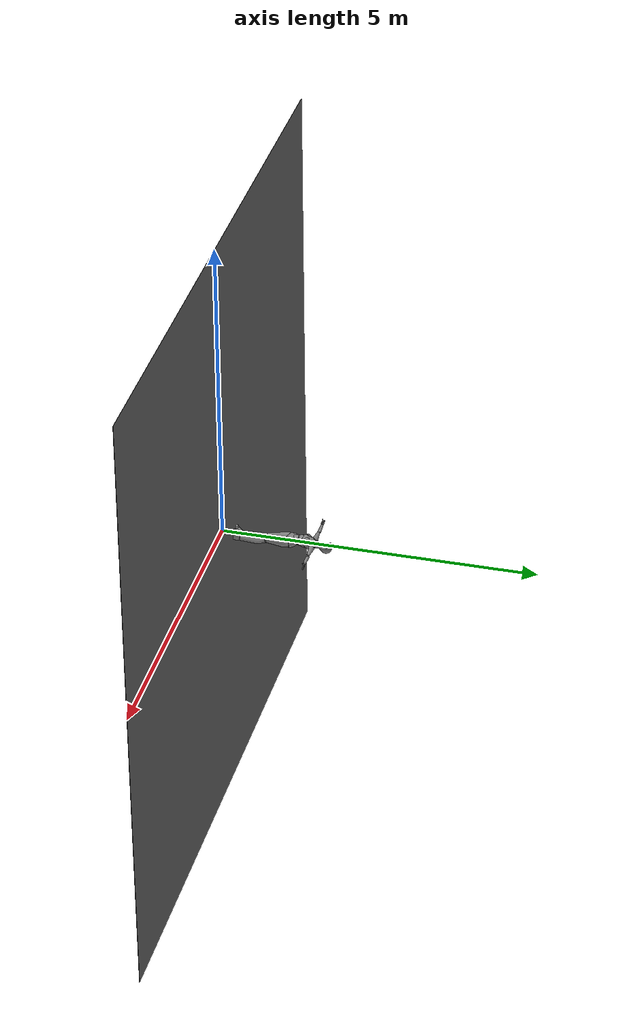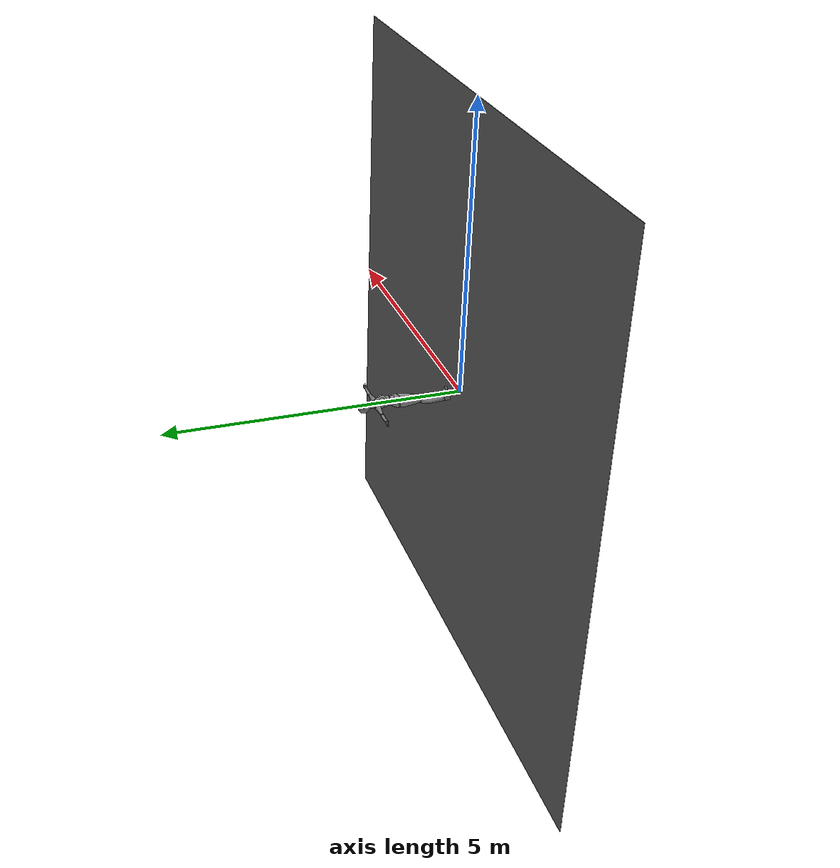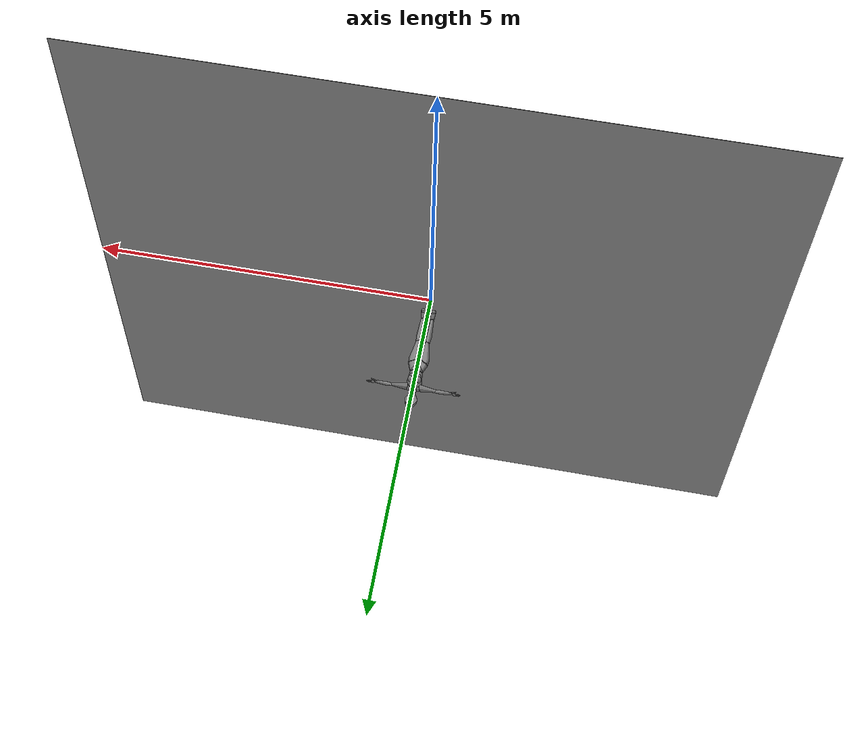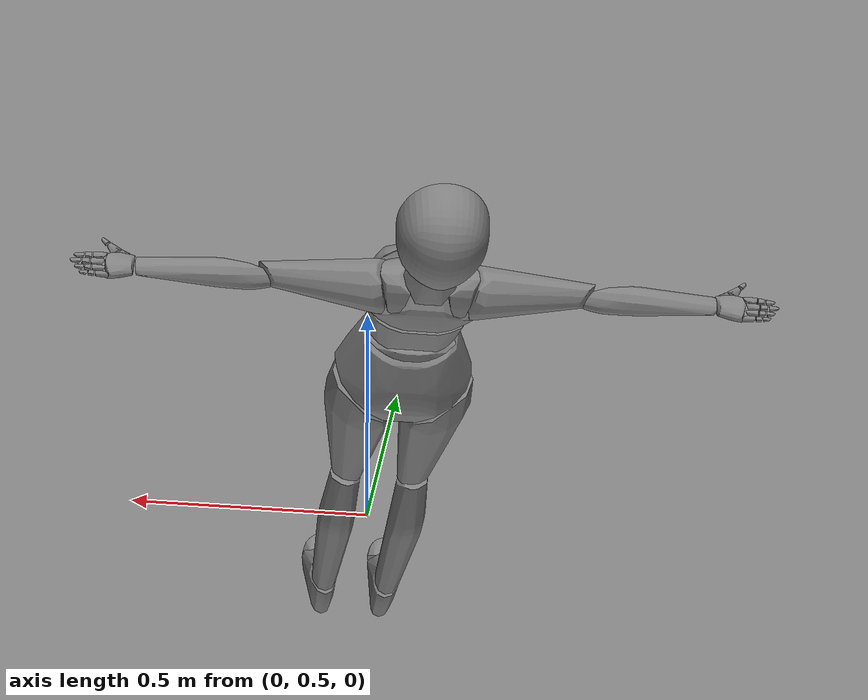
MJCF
<?xml version="1.0" ?>
<mujoco model="vrm_physics_body">
    <compiler angle="radian" meshdir="STL" autolimits="true"/>
    <default>
        <geom density="1000" contype="1" conaffinity="0"/>
        <joint damping="0.01" stiffness="0.0"/>
    </default>
    <asset>
        <mesh name="J_Bip_C_Hips" file="J_Bip_C_Hips.stl"/>
        <mesh name="J_Bip_C_Spine" file="J_Bip_C_Spine.stl"/>
        <mesh name="J_Bip_C_Chest" file="J_Bip_C_Chest.stl"/>
        <mesh name="J_Bip_C_UpperChest" file="J_Bip_C_UpperChest.stl"/>
        <mesh name="J_Sec_L_Bust1" file="J_Sec_L_Bust1.stl"/>
        <mesh name="J_Sec_R_Bust1" file="J_Sec_R_Bust1.stl"/>
        <mesh name="J_Bip_C_Neck" file="J_Bip_C_Neck.stl"/>
        <mesh name="J_Bip_C_Head" file="J_Bip_C_Head.stl"/>
        <mesh name="J_Bip_L_Shoulder" file="J_Bip_L_Shoulder.stl"/>
        <mesh name="J_Bip_L_UpperArm" file="J_Bip_L_UpperArm.stl"/>
        <mesh name="J_Bip_L_LowerArm" file="J_Bip_L_LowerArm.stl"/>
        <mesh name="J_Bip_L_Hand" file="J_Bip_L_Hand.stl"/>
        <mesh name="J_Bip_L_Index1" file="J_Bip_L_Index1.stl"/>
        <mesh name="J_Bip_L_Index2" file="J_Bip_L_Index2.stl"/>
        <mesh name="J_Bip_L_Index3" file="J_Bip_L_Index3.stl"/>
        <mesh name="J_Bip_L_Little1" file="J_Bip_L_Little1.stl"/>
        <mesh name="J_Bip_L_Little2" file="J_Bip_L_Little2.stl"/>
        <mesh name="J_Bip_L_Little3" file="J_Bip_L_Little3.stl"/>
        <mesh name="J_Bip_L_Middle1" file="J_Bip_L_Middle1.stl"/>
        <mesh name="J_Bip_L_Middle2" file="J_Bip_L_Middle2.stl"/>
        <mesh name="J_Bip_L_Middle3" file="J_Bip_L_Middle3.stl"/>
        <mesh name="J_Bip_L_Ring1" file="J_Bip_L_Ring1.stl"/>
        <mesh name="J_Bip_L_Ring2" file="J_Bip_L_Ring2.stl"/>
        <mesh name="J_Bip_L_Ring3" file="J_Bip_L_Ring3.stl"/>
        <mesh name="J_Bip_L_Thumb1" file="J_Bip_L_Thumb1.stl"/>
        <mesh name="J_Bip_L_Thumb2" file="J_Bip_L_Thumb2.stl"/>
        <mesh name="J_Bip_L_Thumb3" file="J_Bip_L_Thumb3.stl"/>
        <mesh name="J_Bip_R_Shoulder" file="J_Bip_R_Shoulder.stl"/>
        <mesh name="J_Bip_R_UpperArm" file="J_Bip_R_UpperArm.stl"/>
        <mesh name="J_Bip_R_LowerArm" file="J_Bip_R_LowerArm.stl"/>
        <mesh name="J_Bip_R_Hand" file="J_Bip_R_Hand.stl"/>
        <mesh name="J_Bip_R_Index1" file="J_Bip_R_Index1.stl"/>
        <mesh name="J_Bip_R_Index2" file="J_Bip_R_Index2.stl"/>
        <mesh name="J_Bip_R_Index3" file="J_Bip_R_Index3.stl"/>
        <mesh name="J_Bip_R_Little1" file="J_Bip_R_Little1.stl"/>
        <mesh name="J_Bip_R_Little2" file="J_Bip_R_Little2.stl"/>
        <mesh name="J_Bip_R_Little3" file="J_Bip_R_Little3.stl"/>
        <mesh name="J_Bip_R_Middle1" file="J_Bip_R_Middle1.stl"/>
        <mesh name="J_Bip_R_Middle2" file="J_Bip_R_Middle2.stl"/>
        <mesh name="J_Bip_R_Middle3" file="J_Bip_R_Middle3.stl"/>
        <mesh name="J_Bip_R_Ring1" file="J_Bip_R_Ring1.stl"/>
        <mesh name="J_Bip_R_Ring2" file="J_Bip_R_Ring2.stl"/>
        <mesh name="J_Bip_R_Ring3" file="J_Bip_R_Ring3.stl"/>
        <mesh name="J_Bip_R_Thumb1" file="J_Bip_R_Thumb1.stl"/>
        <mesh name="J_Bip_R_Thumb2" file="J_Bip_R_Thumb2.stl"/>
        <mesh name="J_Bip_R_Thumb3" file="J_Bip_R_Thumb3.stl"/>
        <mesh name="J_Bip_L_UpperLeg" file="J_Bip_L_UpperLeg.stl"/>
        <mesh name="J_Bip_L_LowerLeg" file="J_Bip_L_LowerLeg.stl"/>
        <mesh name="J_Bip_L_Foot" file="J_Bip_L_Foot.stl"/>
        <mesh name="J_Bip_L_ToeBase" file="J_Bip_L_ToeBase.stl"/>
        <mesh name="J_Bip_R_UpperLeg" file="J_Bip_R_UpperLeg.stl"/>
        <mesh name="J_Bip_R_LowerLeg" file="J_Bip_R_LowerLeg.stl"/>
        <mesh name="J_Bip_R_Foot" file="J_Bip_R_Foot.stl"/>
        <mesh name="J_Bip_R_ToeBase" file="J_Bip_R_ToeBase.stl"/>
    </asset>
    <worldbody>
        <geom type="plane" size="5 5 0.1" name="floor" zaxis="0 1 0" contype="0" conaffinity="1"/>
        <body name="J_Bip_C_Hips" pos="0.000000 1.109305 0.000000">
            <freejoint name="root_freejoint"/>
            <geom type="mesh" mesh="J_Bip_C_Hips"/>
            <geom type="sphere" size="0.05" mass="0.5" contype="0" conaffinity="0" rgba="0 0 0 0"/>
            <body name="J_Bip_C_Spine" pos="-0.000000 0.057098 0.005326">
                <joint name="J_Bip_C_Spine" type="ball"/>
                <geom type="mesh" mesh="J_Bip_C_Spine"/>
                <geom type="sphere" size="0.05" mass="0.5" contype="0" conaffinity="0" rgba="0 0 0 0"/>
                <body name="J_Bip_C_Chest" pos="0.000000 0.106512 -0.012713">
                    <joint name="J_Bip_C_Chest" type="ball"/>
                    <geom type="mesh" mesh="J_Bip_C_Chest"/>
                    <geom type="sphere" size="0.05" mass="0.5" contype="0" conaffinity="0" rgba="0 0 0 0"/>
                    <body name="J_Bip_C_UpperChest" pos="-0.000000 0.102391 -0.001320">
                        <joint name="J_Bip_C_UpperChest" type="ball"/>
                        <geom type="mesh" mesh="J_Bip_C_UpperChest"/>
                        <geom type="sphere" size="0.05" mass="0.5" contype="0" conaffinity="0" rgba="0 0 0 0"/>
                        <body name="J_Sec_L_Bust1" pos="0.045813 -0.026929 0.056758">
                            <joint name="J_Sec_L_Bust1" type="ball"/>
                            <geom type="mesh" mesh="J_Sec_L_Bust1"/>
                            <geom type="sphere" size="0.05" mass="0.5" contype="0" conaffinity="0" rgba="0 0 0 0"/>
                            <body name="J_Sec_L_Bust2" pos="-0.001044 0.000069 0.043307">
                                <joint name="J_Sec_L_Bust2" type="ball"/>
                                <geom type="sphere" size="0.05" mass="0.5" contype="0" conaffinity="0" rgba="0 0 0 0"/>
                            </body>
                        </body>
                        <body name="J_Sec_R_Bust1" pos="-0.045813 -0.026929 0.056758">
                            <joint name="J_Sec_R_Bust1" type="ball"/>
                            <geom type="mesh" mesh="J_Sec_R_Bust1"/>
                            <geom type="sphere" size="0.05" mass="0.5" contype="0" conaffinity="0" rgba="0 0 0 0"/>
                            <body name="J_Sec_R_Bust2" pos="0.001044 0.000069 0.043307">
                                <joint name="J_Sec_R_Bust2" type="ball"/>
                                <geom type="sphere" size="0.05" mass="0.5" contype="0" conaffinity="0" rgba="0 0 0 0"/>
                            </body>
                        </body>
                        <body name="J_Bip_C_Neck" pos="-0.000000 0.124557 0.006980">
                            <joint name="J_Bip_C_Neck" type="ball"/>
                            <geom type="mesh" mesh="J_Bip_C_Neck"/>
                            <geom type="sphere" size="0.05" mass="0.5" contype="0" conaffinity="0" rgba="0 0 0 0"/>
                            <body name="J_Bip_C_Head" pos="-0.000000 0.071787 0.000372">
                                <joint name="J_Bip_C_Head" type="ball"/>
                                <geom type="mesh" mesh="J_Bip_C_Head"/>
                                <geom type="sphere" size="0.05" mass="0.5" contype="0" conaffinity="0" rgba="0 0 0 0"/>
                                <body name="J_Adj_L_FaceEye" pos="0.014650 0.063260 0.023188">
                                    <joint name="J_Adj_L_FaceEye" type="ball"/>
                                    <geom type="sphere" size="0.05" mass="0.5" contype="0" conaffinity="0" rgba="0 0 0 0"/>
                                </body>
                                <body name="J_Adj_R_FaceEye" pos="-0.014650 0.063260 0.023188">
                                    <joint name="J_Adj_R_FaceEye" type="ball"/>
                                    <geom type="sphere" size="0.05" mass="0.5" contype="0" conaffinity="0" rgba="0 0 0 0"/>
                                </body>
                                <body name="J_Sec_Hair1_01" pos="0.002419 0.108442 0.107708">
                                    <joint name="J_Sec_Hair1_01" type="ball"/>
                                    <geom type="sphere" size="0.05" mass="0.5" contype="0" conaffinity="0" rgba="0 0 0 0"/>
                                    <body name="J_Sec_Hair2_01" pos="0.001229 0.052552 -0.000000">
                                        <joint name="J_Sec_Hair2_01" type="ball"/>
                                        <geom type="sphere" size="0.05" mass="0.5" contype="0" conaffinity="0" rgba="0 0 0 0"/>
                                    </body>
                                </body>
                                <body name="J_Sec_Hair1_02" pos="0.069055 0.072728 0.090523">
                                    <joint name="J_Sec_Hair1_02" type="ball"/>
                                    <geom type="sphere" size="0.05" mass="0.5" contype="0" conaffinity="0" rgba="0 0 0 0"/>
                                    <body name="J_Sec_Hair2_02" pos="-0.000484 0.066251 0.000000">
                                        <joint name="J_Sec_Hair2_02" type="ball"/>
                                        <geom type="sphere" size="0.05" mass="0.5" contype="0" conaffinity="0" rgba="0 0 0 0"/>
                                        <body name="J_Sec_Hair3_02" pos="-0.002515 0.062720 -0.000000">
                                            <joint name="J_Sec_Hair3_02" type="ball"/>
                                            <geom type="sphere" size="0.05" mass="0.5" contype="0" conaffinity="0" rgba="0 0 0 0"/>
                                        </body>
                                    </body>
                                </body>
                                <body name="J_Sec_Hair1_03" pos="0.086742 0.076004 0.003153">
                                    <joint name="J_Sec_Hair1_03" type="ball"/>
                                    <geom type="sphere" size="0.05" mass="0.5" contype="0" conaffinity="0" rgba="0 0 0 0"/>
                                    <body name="J_Sec_Hair2_03" pos="0.000127 0.044013 -0.000000">
                                        <joint name="J_Sec_Hair2_03" type="ball"/>
                                        <geom type="sphere" size="0.05" mass="0.5" contype="0" conaffinity="0" rgba="0 0 0 0"/>
                                        <body name="J_Sec_Hair3_03" pos="0.000271 0.043324 0.000000">
                                            <joint name="J_Sec_Hair3_03" type="ball"/>
                                            <geom type="sphere" size="0.05" mass="0.5" contype="0" conaffinity="0" rgba="0 0 0 0"/>
                                            <body name="J_Sec_Hair4_03" pos="-0.002194 0.040856 -0.000000">
                                                <joint name="J_Sec_Hair4_03" type="ball"/>
                                                <geom type="sphere" size="0.05" mass="0.5" contype="0" conaffinity="0" rgba="0 0 0 0"/>
                                            </body>
                                        </body>
                                    </body>
                                </body>
                                <body name="J_Sec_Hair1_04" pos="0.087952 0.082531 -0.034798">
                                    <joint name="J_Sec_Hair1_04" type="ball"/>
                                    <geom type="sphere" size="0.05" mass="0.5" contype="0" conaffinity="0" rgba="0 0 0 0"/>
                                    <body name="J_Sec_Hair2_04" pos="-0.000263 0.045137 -0.000000">
                                        <joint name="J_Sec_Hair2_04" type="ball"/>
                                        <geom type="sphere" size="0.05" mass="0.5" contype="0" conaffinity="0" rgba="0 0 0 0"/>
                                        <body name="J_Sec_Hair3_04" pos="0.000365 0.045153 -0.000000">
                                            <joint name="J_Sec_Hair3_04" type="ball"/>
                                            <geom type="sphere" size="0.05" mass="0.5" contype="0" conaffinity="0" rgba="0 0 0 0"/>
                                            <body name="J_Sec_Hair4_04" pos="-0.001400 0.040048 0.000000">
                                                <joint name="J_Sec_Hair4_04" type="ball"/>
                                                <geom type="sphere" size="0.05" mass="0.5" contype="0" conaffinity="0" rgba="0 0 0 0"/>
                                            </body>
                                        </body>
                                    </body>
                                </body>
                                <body name="J_Sec_Hair1_05" pos="-0.074234 0.099107 0.078419">
                                    <joint name="J_Sec_Hair1_05" type="ball"/>
                                    <geom type="sphere" size="0.05" mass="0.5" contype="0" conaffinity="0" rgba="0 0 0 0"/>
                                    <body name="J_Sec_Hair2_05" pos="-0.000331 0.074893 0.000000">
                                        <joint name="J_Sec_Hair2_05" type="ball"/>
                                        <geom type="sphere" size="0.05" mass="0.5" contype="0" conaffinity="0" rgba="0 0 0 0"/>
                                        <body name="J_Sec_Hair3_05" pos="0.002255 0.072153 0.000000">
                                            <joint name="J_Sec_Hair3_05" type="ball"/>
                                            <geom type="sphere" size="0.05" mass="0.5" contype="0" conaffinity="0" rgba="0 0 0 0"/>
                                        </body>
                                    </body>
                                </body>
                                <body name="J_Sec_Hair1_06" pos="0.000381 0.090281 -0.119759">
                                    <joint name="J_Sec_Hair1_06" type="ball"/>
                                    <geom type="sphere" size="0.05" mass="0.5" contype="0" conaffinity="0" rgba="0 0 0 0"/>
                                    <body name="J_Sec_Hair2_06" pos="-0.000280 0.042569 0.000000">
                                        <joint name="J_Sec_Hair2_06" type="ball"/>
                                        <geom type="sphere" size="0.05" mass="0.5" contype="0" conaffinity="0" rgba="0 0 0 0"/>
                                        <body name="J_Sec_Hair3_06" pos="-0.000558 0.042443 0.000000">
                                            <joint name="J_Sec_Hair3_06" type="ball"/>
                                            <geom type="sphere" size="0.05" mass="0.5" contype="0" conaffinity="0" rgba="0 0 0 0"/>
                                            <body name="J_Sec_Hair4_06" pos="0.000391 0.042381 -0.000000">
                                                <joint name="J_Sec_Hair4_06" type="ball"/>
                                                <geom type="sphere" size="0.05" mass="0.5" contype="0" conaffinity="0" rgba="0 0 0 0"/>
                                            </body>
                                        </body>
                                    </body>
                                </body>
                                <body name="J_Sec_Hair1_07" pos="-0.092210 0.087500 -0.000829">
                                    <joint name="J_Sec_Hair1_07" type="ball"/>
                                    <geom type="sphere" size="0.05" mass="0.5" contype="0" conaffinity="0" rgba="0 0 0 0"/>
                                    <body name="J_Sec_Hair2_07" pos="-0.000233 0.043964 -0.000000">
                                        <joint name="J_Sec_Hair2_07" type="ball"/>
                                        <geom type="sphere" size="0.05" mass="0.5" contype="0" conaffinity="0" rgba="0 0 0 0"/>
                                        <body name="J_Sec_Hair3_07" pos="-0.000981 0.043719 -0.000000">
                                            <joint name="J_Sec_Hair3_07" type="ball"/>
                                            <geom type="sphere" size="0.05" mass="0.5" contype="0" conaffinity="0" rgba="0 0 0 0"/>
                                            <body name="J_Sec_Hair4_07" pos="0.000891 0.041266 -0.000000">
                                                <joint name="J_Sec_Hair4_07" type="ball"/>
                                                <geom type="sphere" size="0.05" mass="0.5" contype="0" conaffinity="0" rgba="0 0 0 0"/>
                                            </body>
                                        </body>
                                    </body>
                                </body>
                            </body>
                        </body>
                        <body name="J_Bip_L_Shoulder" pos="0.020164 0.099307 0.006153">
                            <joint name="J_Bip_L_Shoulder" type="ball"/>
                            <geom type="mesh" mesh="J_Bip_L_Shoulder"/>
                            <geom type="sphere" size="0.05" mass="0.5" contype="0" conaffinity="0" rgba="0 0 0 0"/>
                            <body name="J_Bip_L_UpperArm" pos="0.060882 -0.000051 -0.000000">
                                <joint name="J_Bip_L_UpperArm" type="ball"/>
                                <geom type="mesh" mesh="J_Bip_L_UpperArm"/>
                                <geom type="sphere" size="0.05" mass="0.5" contype="0" conaffinity="0" rgba="0 0 0 0"/>
                                <body name="J_Bip_L_LowerArm" pos="0.253601 0.000000 0.000000">
                                    <joint name="J_Bip_L_LowerArm" type="ball"/>
                                    <geom type="mesh" mesh="J_Bip_L_LowerArm"/>
                                    <geom type="sphere" size="0.05" mass="0.5" contype="0" conaffinity="0" rgba="0 0 0 0"/>
                                    <body name="J_Bip_L_Hand" pos="0.226637 -0.000000 0.000014">
                                        <joint name="J_Bip_L_Hand" type="ball"/>
                                        <geom type="mesh" mesh="J_Bip_L_Hand"/>
                                        <geom type="sphere" size="0.05" mass="0.5" contype="0" conaffinity="0" rgba="0 0 0 0"/>
                                        <body name="J_Bip_L_Index1" pos="0.054373 0.006165 0.016419">
                                            <joint name="J_Bip_L_Index1" type="ball"/>
                                            <geom type="mesh" mesh="J_Bip_L_Index1"/>
                                            <geom type="sphere" size="0.05" mass="0.5" contype="0" conaffinity="0" rgba="0 0 0 0"/>
                                            <body name="J_Bip_L_Index2" pos="0.027624 0.000000 -0.000004">
                                                <joint name="J_Bip_L_Index2" type="ball"/>
                                                <geom type="mesh" mesh="J_Bip_L_Index2"/>
                                                <geom type="sphere" size="0.05" mass="0.5" contype="0" conaffinity="0" rgba="0 0 0 0"/>
                                                <body name="J_Bip_L_Index3" pos="0.017008 -0.000003 -0.000004">
                                                    <joint name="J_Bip_L_Index3" type="ball"/>
                                                    <geom type="mesh" mesh="J_Bip_L_Index3"/>
                                                    <geom type="sphere" size="0.05" mass="0.5" contype="0" conaffinity="0" rgba="0 0 0 0"/>
                                                </body>
                                            </body>
                                        </body>
                                        <body name="J_Bip_L_Little1" pos="0.050734 0.006165 -0.024370">
                                            <joint name="J_Bip_L_Little1" type="ball"/>
                                            <geom type="mesh" mesh="J_Bip_L_Little1"/>
                                            <geom type="sphere" size="0.05" mass="0.5" contype="0" conaffinity="0" rgba="0 0 0 0"/>
                                            <body name="J_Bip_L_Little2" pos="0.026108 0.000000 0.000000">
                                                <joint name="J_Bip_L_Little2" type="ball"/>
                                                <geom type="mesh" mesh="J_Bip_L_Little2"/>
                                                <geom type="sphere" size="0.05" mass="0.5" contype="0" conaffinity="0" rgba="0 0 0 0"/>
                                                <body name="J_Bip_L_Little3" pos="0.015047 0.000000 0.000000">
                                                    <joint name="J_Bip_L_Little3" type="ball"/>
                                                    <geom type="mesh" mesh="J_Bip_L_Little3"/>
                                                    <geom type="sphere" size="0.05" mass="0.5" contype="0" conaffinity="0" rgba="0 0 0 0"/>
                                                </body>
                                            </body>
                                        </body>
                                        <body name="J_Bip_L_Middle1" pos="0.055114 0.006165 0.001710">
                                            <joint name="J_Bip_L_Middle1" type="ball"/>
                                            <geom type="mesh" mesh="J_Bip_L_Middle1"/>
                                            <geom type="sphere" size="0.05" mass="0.5" contype="0" conaffinity="0" rgba="0 0 0 0"/>
                                            <body name="J_Bip_L_Middle2" pos="0.030770 -0.000000 -0.000000">
                                                <joint name="J_Bip_L_Middle2" type="ball"/>
                                                <geom type="mesh" mesh="J_Bip_L_Middle2"/>
                                                <geom type="sphere" size="0.05" mass="0.5" contype="0" conaffinity="0" rgba="0 0 0 0"/>
                                                <body name="J_Bip_L_Middle3" pos="0.018983 0.000000 -0.000000">
                                                    <joint name="J_Bip_L_Middle3" type="ball"/>
                                                    <geom type="mesh" mesh="J_Bip_L_Middle3"/>
                                                    <geom type="sphere" size="0.05" mass="0.5" contype="0" conaffinity="0" rgba="0 0 0 0"/>
                                                </body>
                                            </body>
                                        </body>
                                        <body name="J_Bip_L_Ring1" pos="0.054486 0.006165 -0.011350">
                                            <joint name="J_Bip_L_Ring1" type="ball"/>
                                            <geom type="mesh" mesh="J_Bip_L_Ring1"/>
                                            <geom type="sphere" size="0.05" mass="0.5" contype="0" conaffinity="0" rgba="0 0 0 0"/>
                                            <body name="J_Bip_L_Ring2" pos="0.028543 0.000000 0.000000">
                                                <joint name="J_Bip_L_Ring2" type="ball"/>
                                                <geom type="mesh" mesh="J_Bip_L_Ring2"/>
                                                <geom type="sphere" size="0.05" mass="0.5" contype="0" conaffinity="0" rgba="0 0 0 0"/>
                                                <body name="J_Bip_L_Ring3" pos="0.016472 0.000000 0.000000">
                                                    <joint name="J_Bip_L_Ring3" type="ball"/>
                                                    <geom type="mesh" mesh="J_Bip_L_Ring3"/>
                                                    <geom type="sphere" size="0.05" mass="0.5" contype="0" conaffinity="0" rgba="0 0 0 0"/>
                                                </body>
                                            </body>
                                        </body>
                                        <body name="J_Bip_L_Thumb1" pos="0.002926 -0.008360 0.013334">
                                            <joint name="J_Bip_L_Thumb1" type="ball"/>
                                            <geom type="mesh" mesh="J_Bip_L_Thumb1"/>
                                            <geom type="sphere" size="0.05" mass="0.5" contype="0" conaffinity="0" rgba="0 0 0 0"/>
                                            <body name="J_Bip_L_Thumb2" pos="0.038790 0.000114 -0.000006">
                                                <joint name="J_Bip_L_Thumb2" type="ball"/>
                                                <geom type="mesh" mesh="J_Bip_L_Thumb2"/>
                                                <geom type="sphere" size="0.05" mass="0.5" contype="0" conaffinity="0" rgba="0 0 0 0"/>
                                                <body name="J_Bip_L_Thumb3" pos="0.023854 0.000069 -0.000005">
                                                    <joint name="J_Bip_L_Thumb3" type="ball"/>
                                                    <geom type="mesh" mesh="J_Bip_L_Thumb3"/>
                                                    <geom type="sphere" size="0.05" mass="0.5" contype="0" conaffinity="0" rgba="0 0 0 0"/>
                                                </body>
                                            </body>
                                        </body>
                                    </body>
                                </body>
                            </body>
                        </body>
                        <body name="J_Bip_R_Shoulder" pos="-0.020164 0.099307 0.006153">
                            <joint name="J_Bip_R_Shoulder" type="ball"/>
                            <geom type="mesh" mesh="J_Bip_R_Shoulder"/>
                            <geom type="sphere" size="0.05" mass="0.5" contype="0" conaffinity="0" rgba="0 0 0 0"/>
                            <body name="J_Bip_R_UpperArm" pos="-0.060882 -0.000051 -0.000000">
                                <joint name="J_Bip_R_UpperArm" type="ball"/>
                                <geom type="mesh" mesh="J_Bip_R_UpperArm"/>
                                <geom type="sphere" size="0.05" mass="0.5" contype="0" conaffinity="0" rgba="0 0 0 0"/>
                                <body name="J_Bip_R_LowerArm" pos="-0.253601 0.000000 0.000000">
                                    <joint name="J_Bip_R_LowerArm" type="ball"/>
                                    <geom type="mesh" mesh="J_Bip_R_LowerArm"/>
                                    <geom type="sphere" size="0.05" mass="0.5" contype="0" conaffinity="0" rgba="0 0 0 0"/>
                                    <body name="J_Bip_R_Hand" pos="-0.226637 -0.000000 0.000014">
                                        <joint name="J_Bip_R_Hand" type="ball"/>
                                        <geom type="mesh" mesh="J_Bip_R_Hand"/>
                                        <geom type="sphere" size="0.05" mass="0.5" contype="0" conaffinity="0" rgba="0 0 0 0"/>
                                        <body name="J_Bip_R_Index1" pos="-0.054373 0.006165 0.016419">
                                            <joint name="J_Bip_R_Index1" type="ball"/>
                                            <geom type="mesh" mesh="J_Bip_R_Index1"/>
                                            <geom type="sphere" size="0.05" mass="0.5" contype="0" conaffinity="0" rgba="0 0 0 0"/>
                                            <body name="J_Bip_R_Index2" pos="-0.027624 0.000000 -0.000004">
                                                <joint name="J_Bip_R_Index2" type="ball"/>
                                                <geom type="mesh" mesh="J_Bip_R_Index2"/>
                                                <geom type="sphere" size="0.05" mass="0.5" contype="0" conaffinity="0" rgba="0 0 0 0"/>
                                                <body name="J_Bip_R_Index3" pos="-0.017008 -0.000003 -0.000004">
                                                    <joint name="J_Bip_R_Index3" type="ball"/>
                                                    <geom type="mesh" mesh="J_Bip_R_Index3"/>
                                                    <geom type="sphere" size="0.05" mass="0.5" contype="0" conaffinity="0" rgba="0 0 0 0"/>
                                                </body>
                                            </body>
                                        </body>
                                        <body name="J_Bip_R_Little1" pos="-0.050734 0.006165 -0.024370">
                                            <joint name="J_Bip_R_Little1" type="ball"/>
                                            <geom type="mesh" mesh="J_Bip_R_Little1"/>
                                            <geom type="sphere" size="0.05" mass="0.5" contype="0" conaffinity="0" rgba="0 0 0 0"/>
                                            <body name="J_Bip_R_Little2" pos="-0.026108 0.000000 0.000000">
                                                <joint name="J_Bip_R_Little2" type="ball"/>
                                                <geom type="mesh" mesh="J_Bip_R_Little2"/>
                                                <geom type="sphere" size="0.05" mass="0.5" contype="0" conaffinity="0" rgba="0 0 0 0"/>
                                                <body name="J_Bip_R_Little3" pos="-0.015047 0.000000 0.000000">
                                                    <joint name="J_Bip_R_Little3" type="ball"/>
                                                    <geom type="mesh" mesh="J_Bip_R_Little3"/>
                                                    <geom type="sphere" size="0.05" mass="0.5" contype="0" conaffinity="0" rgba="0 0 0 0"/>
                                                </body>
                                            </body>
                                        </body>
                                        <body name="J_Bip_R_Middle1" pos="-0.055114 0.006165 0.001710">
                                            <joint name="J_Bip_R_Middle1" type="ball"/>
                                            <geom type="mesh" mesh="J_Bip_R_Middle1"/>
                                            <geom type="sphere" size="0.05" mass="0.5" contype="0" conaffinity="0" rgba="0 0 0 0"/>
                                            <body name="J_Bip_R_Middle2" pos="-0.030770 -0.000000 -0.000000">
                                                <joint name="J_Bip_R_Middle2" type="ball"/>
                                                <geom type="mesh" mesh="J_Bip_R_Middle2"/>
                                                <geom type="sphere" size="0.05" mass="0.5" contype="0" conaffinity="0" rgba="0 0 0 0"/>
                                                <body name="J_Bip_R_Middle3" pos="-0.018983 0.000000 -0.000000">
                                                    <joint name="J_Bip_R_Middle3" type="ball"/>
                                                    <geom type="mesh" mesh="J_Bip_R_Middle3"/>
                                                    <geom type="sphere" size="0.05" mass="0.5" contype="0" conaffinity="0" rgba="0 0 0 0"/>
                                                </body>
                                            </body>
                                        </body>
                                        <body name="J_Bip_R_Ring1" pos="-0.054486 0.006165 -0.011350">
                                            <joint name="J_Bip_R_Ring1" type="ball"/>
                                            <geom type="mesh" mesh="J_Bip_R_Ring1"/>
                                            <geom type="sphere" size="0.05" mass="0.5" contype="0" conaffinity="0" rgba="0 0 0 0"/>
                                            <body name="J_Bip_R_Ring2" pos="-0.028543 0.000000 0.000000">
                                                <joint name="J_Bip_R_Ring2" type="ball"/>
                                                <geom type="mesh" mesh="J_Bip_R_Ring2"/>
                                                <geom type="sphere" size="0.05" mass="0.5" contype="0" conaffinity="0" rgba="0 0 0 0"/>
                                                <body name="J_Bip_R_Ring3" pos="-0.016472 0.000000 0.000000">
                                                    <joint name="J_Bip_R_Ring3" type="ball"/>
                                                    <geom type="mesh" mesh="J_Bip_R_Ring3"/>
                                                    <geom type="sphere" size="0.05" mass="0.5" contype="0" conaffinity="0" rgba="0 0 0 0"/>
                                                </body>
                                            </body>
                                        </body>
                                        <body name="J_Bip_R_Thumb1" pos="-0.002926 -0.008360 0.013334">
                                            <joint name="J_Bip_R_Thumb1" type="ball"/>
                                            <geom type="mesh" mesh="J_Bip_R_Thumb1"/>
                                            <geom type="sphere" size="0.05" mass="0.5" contype="0" conaffinity="0" rgba="0 0 0 0"/>
                                            <body name="J_Bip_R_Thumb2" pos="-0.038790 0.000114 -0.000006">
                                                <joint name="J_Bip_R_Thumb2" type="ball"/>
                                                <geom type="mesh" mesh="J_Bip_R_Thumb2"/>
                                                <geom type="sphere" size="0.05" mass="0.5" contype="0" conaffinity="0" rgba="0 0 0 0"/>
                                                <body name="J_Bip_R_Thumb3" pos="-0.023854 0.000069 -0.000005">
                                                    <joint name="J_Bip_R_Thumb3" type="ball"/>
                                                    <geom type="mesh" mesh="J_Bip_R_Thumb3"/>
                                                    <geom type="sphere" size="0.05" mass="0.5" contype="0" conaffinity="0" rgba="0 0 0 0"/>
                                                </body>
                                            </body>
                                        </body>
                                    </body>
                                </body>
                            </body>
                        </body>
                    </body>
                </body>
            </body>
            <body name="J_Bip_L_UpperLeg" pos="0.069469 -0.036155 0.001237">
                <joint name="J_Bip_L_UpperLeg" type="ball"/>
                <geom type="mesh" mesh="J_Bip_L_UpperLeg"/>
                <geom type="sphere" size="0.05" mass="0.5" contype="0" conaffinity="0" rgba="0 0 0 0"/>
                <body name="J_Bip_L_LowerLeg" pos="-0.000000 -0.364862 -0.000001">
                    <joint name="J_Bip_L_LowerLeg" type="ball"/>
                    <geom type="mesh" mesh="J_Bip_L_LowerLeg"/>
                    <geom type="sphere" size="0.05" mass="0.5" contype="0" conaffinity="0" rgba="0 0 0 0"/>
                    <body name="J_Bip_L_Foot" pos="-0.000111 -0.409190 0.002444">
                        <joint name="J_Bip_L_Foot" type="ball"/>
                        <geom type="mesh" mesh="J_Bip_L_Foot"/>
                        <geom type="sphere" size="0.05" mass="0.5" contype="0" conaffinity="0" rgba="0 0 0 0"/>
                        <body name="J_Bip_L_ToeBase" pos="0.000000 -0.053395 0.094937">
                            <joint name="J_Bip_L_ToeBase" type="ball"/>
                            <geom type="mesh" mesh="J_Bip_L_ToeBase"/>
                            <geom type="sphere" size="0.05" mass="0.5" contype="0" conaffinity="0" rgba="0 0 0 0"/>
                        </body>
                    </body>
                </body>
            </body>
            <body name="J_Bip_R_UpperLeg" pos="-0.069469 -0.036155 0.001237">
                <joint name="J_Bip_R_UpperLeg" type="ball"/>
                <geom type="mesh" mesh="J_Bip_R_UpperLeg"/>
                <geom type="sphere" size="0.05" mass="0.5" contype="0" conaffinity="0" rgba="0 0 0 0"/>
                <body name="J_Bip_R_LowerLeg" pos="0.000000 -0.364862 -0.000001">
                    <joint name="J_Bip_R_LowerLeg" type="ball"/>
                    <geom type="mesh" mesh="J_Bip_R_LowerLeg"/>
                    <geom type="sphere" size="0.05" mass="0.5" contype="0" conaffinity="0" rgba="0 0 0 0"/>
                    <body name="J_Bip_R_Foot" pos="0.000111 -0.409190 0.002444">
                        <joint name="J_Bip_R_Foot" type="ball"/>
                        <geom type="mesh" mesh="J_Bip_R_Foot"/>
                        <geom type="sphere" size="0.05" mass="0.5" contype="0" conaffinity="0" rgba="0 0 0 0"/>
                        <body name="J_Bip_R_ToeBase" pos="0.000000 -0.053395 0.094937">
                            <joint name="J_Bip_R_ToeBase" type="ball"/>
                            <geom type="mesh" mesh="J_Bip_R_ToeBase"/>
                            <geom type="sphere" size="0.05" mass="0.5" contype="0" conaffinity="0" rgba="0 0 0 0"/>
                        </body>
                    </body>
                </body>
            </body>
        </body>
    </worldbody>
</mujoco>
